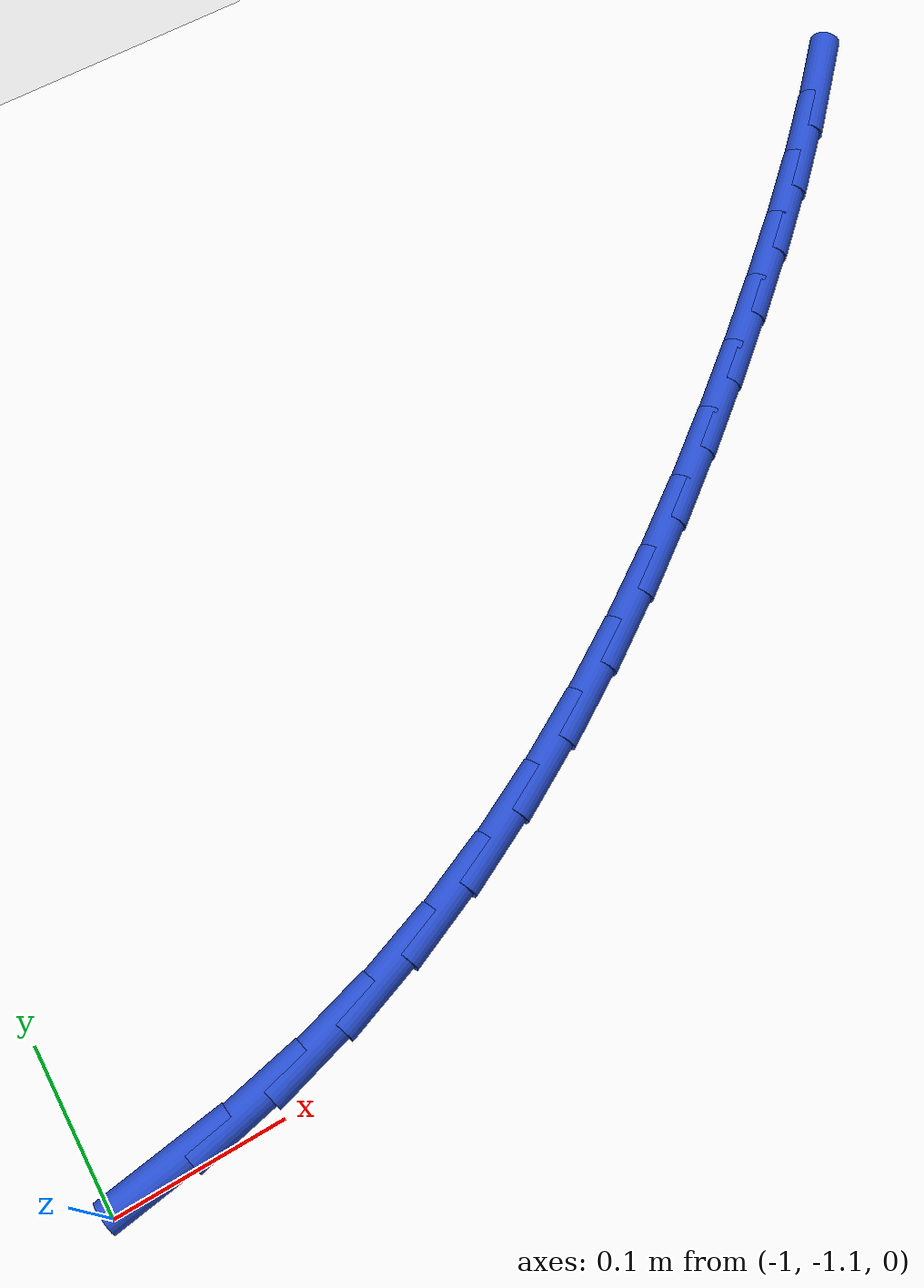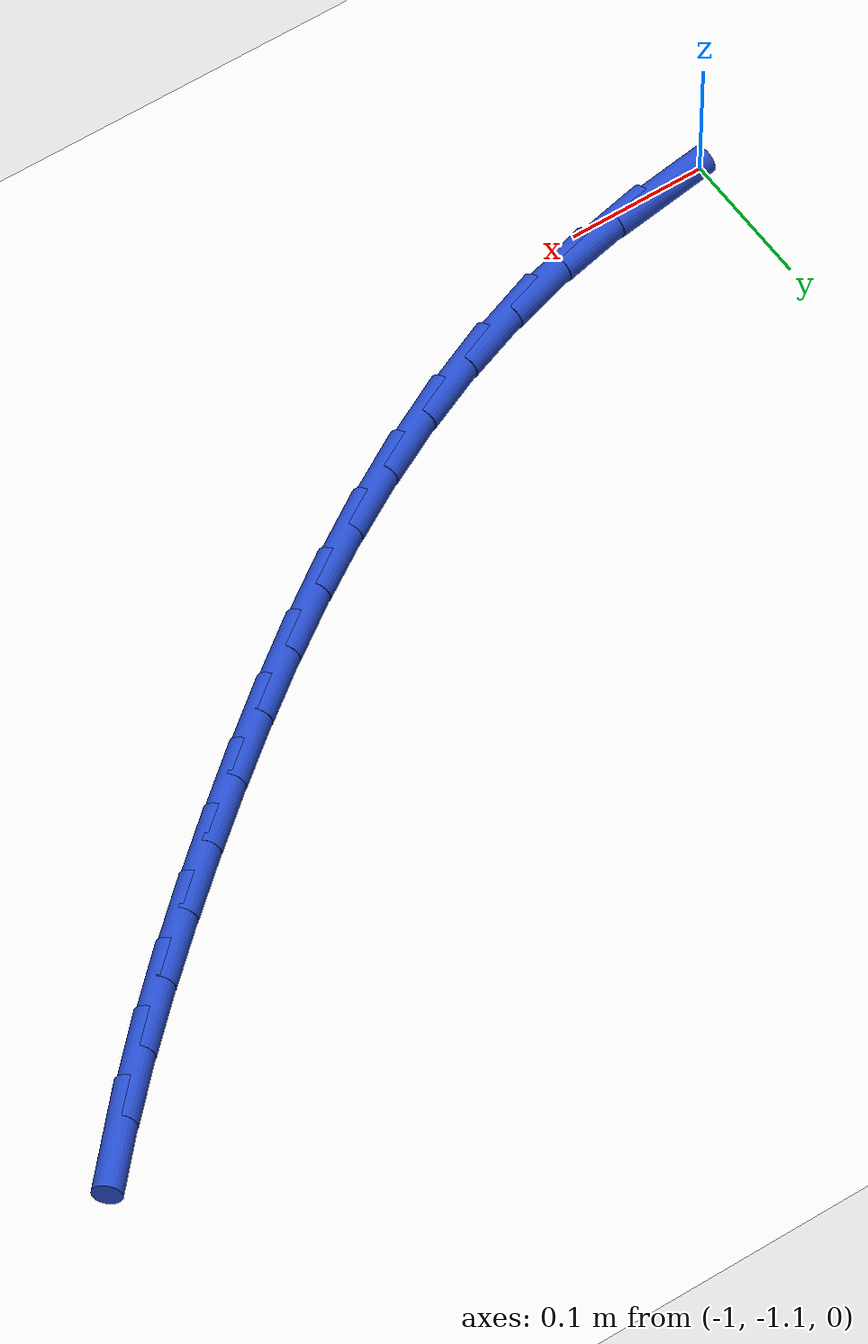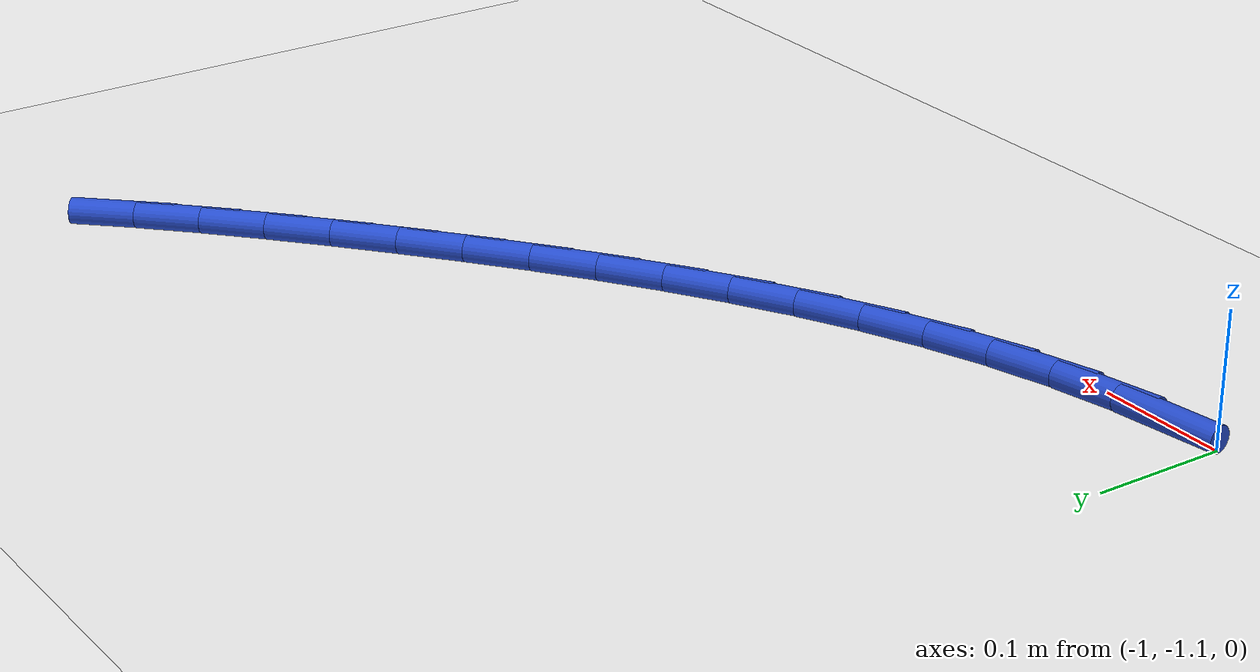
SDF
<sdf version="1.6">
 <world name="default">
  <model name="ground_plane">
   <static>1</static>
   <link name="link">
    <collision name="collision">
     <geometry><plane><normal>0 0 1</normal><size>100 100</size></plane></geometry>
     <surface><friction><ode><mu>100</mu><mu2>50</mu2></ode></friction></surface>
    </collision>
    <visual name="visual">
     <cast_shadows>0</cast_shadows>
     <geometry><plane><normal>0 0 1</normal><size>100 100</size></plane></geometry>
     <material>
      <script><uri>file://media/materials/scripts/gazebo.material</uri><name>Gazebo/WhiteGlow</name></script>
     </material>
    </visual>
   </link>
  </model>
  <model name="line">
   <link name="link_99">
    <pose>-0.9627286729455454 -1.0933399564920747 0.01 0 1.57 0.14373714194259793</pose>
    <collision name="collision">
     <geometry><cylinder><radius>0.01</radius><length>0.08</length></cylinder></geometry>
    </collision>
    <visual name="visual">
     <material>
      <script><name>Gazebo/Blue</name><uri>file://media/materials/scripts/gazebo.material</uri></script>
     </material>
     <geometry><cylinder><radius>0.01</radius><length>0.08</length></cylinder></geometry>
    </visual>
   </link>
   <link name="link_100">
    <pose>-0.9129106615626577 -1.0861295327241636 0.01 0 1.57 0.21806202132912664</pose>
    <collision name="collision">
     <geometry><cylinder><radius>0.01</radius><length>0.08</length></cylinder></geometry>
    </collision>
    <visual name="visual">
     <material>
      <script><name>Gazebo/Blue</name><uri>file://media/materials/scripts/gazebo.material</uri></script>
     </material>
     <geometry><cylinder><radius>0.01</radius><length>0.08</length></cylinder></geometry>
    </visual>
   </link>
   <link name="link_101">
    <pose>-0.8640718873249905 -1.0753075728177888 0.01 0 1.57 0.29240344692224823</pose>
    <collision name="collision">
     <geometry><cylinder><radius>0.01</radius><length>0.08</length></cylinder></geometry>
    </collision>
    <visual name="visual">
     <material>
      <script><name>Gazebo/Blue</name><uri>file://media/materials/scripts/gazebo.material</uri></script>
     </material>
     <geometry><cylinder><radius>0.01</radius><length>0.08</length></cylinder></geometry>
    </visual>
   </link>
   <link name="link_102">
    <pose>-0.8163472767594395 -1.0609409309491673 0.01 0 1.57 0.36127701911111876</pose>
    <collision name="collision">
     <geometry><cylinder><radius>0.01</radius><length>0.08</length></cylinder></geometry>
    </collision>
    <visual name="visual">
     <material>
      <script><name>Gazebo/Blue</name><uri>file://media/materials/scripts/gazebo.material</uri></script>
     </material>
     <geometry><cylinder><radius>0.01</radius><length>0.08</length></cylinder></geometry>
    </visual>
   </link>
   <link name="link_103">
    <pose>-0.7697017147978858 -1.0433153689563817 0.01 0 1.57 0.4238962108793412</pose>
    <collision name="collision">
     <geometry><cylinder><radius>0.01</radius><length>0.08</length></cylinder></geometry>
    </collision>
    <visual name="visual">
     <material>
      <script><name>Gazebo/Blue</name><uri>file://media/materials/scripts/gazebo.material</uri></script>
     </material>
     <geometry><cylinder><radius>0.01</radius><length>0.08</length></cylinder></geometry>
    </visual>
   </link>
   <link name="link_104">
    <pose>-0.7240881195067731 -1.0227320545464806 0.01 0 1.57 0.48010062893027894</pose>
    <collision name="collision">
     <geometry><cylinder><radius>0.01</radius><length>0.08</length></cylinder></geometry>
    </collision>
    <visual name="visual">
     <material>
      <script><name>Gazebo/Blue</name><uri>file://media/materials/scripts/gazebo.material</uri></script>
     </material>
     <geometry><cylinder><radius>0.01</radius><length>0.08</length></cylinder></geometry>
    </visual>
   </link>
   <link name="link_105">
    <pose>-0.6794594089525465 -0.9994921554265135 0.01 0 1.57 0.5299330348911121</pose>
    <collision name="collision">
     <geometry><cylinder><radius>0.01</radius><length>0.08</length></cylinder></geometry>
    </collision>
    <visual name="visual">
     <material>
      <script><name>Gazebo/Blue</name><uri>file://media/materials/scripts/gazebo.material</uri></script>
     </material>
     <geometry><cylinder><radius>0.01</radius><length>0.08</length></cylinder></geometry>
    </visual>
   </link>
   <link name="link_106">
    <pose>-0.6357685012016513 -0.9738968393035294 0.01 0 1.57 0.5735687559191118</pose>
    <collision name="collision">
     <geometry><cylinder><radius>0.01</radius><length>0.08</length></cylinder></geometry>
    </collision>
    <visual name="visual">
     <material>
      <script><name>Gazebo/Blue</name><uri>file://media/materials/scripts/gazebo.material</uri></script>
     </material>
     <geometry><cylinder><radius>0.01</radius><length>0.08</length></cylinder></geometry>
    </visual>
   </link>
   <link name="link_107">
    <pose>-0.5929683143205322 -0.9462472738845777 0.01 0 1.57 0.6112546546484939</pose>
    <collision name="collision">
     <geometry><cylinder><radius>0.01</radius><length>0.08</length></cylinder></geometry>
    </collision>
    <visual name="visual">
     <material>
      <script><name>Gazebo/Blue</name><uri>file://media/materials/scripts/gazebo.material</uri></script>
     </material>
     <geometry><cylinder><radius>0.01</radius><length>0.08</length></cylinder></geometry>
    </visual>
   </link>
   <link name="link_108">
    <pose>-0.5510117663756351 -0.9168446268767083 0.01 0 1.57 0.643261107271494</pose>
    <collision name="collision">
     <geometry><cylinder><radius>0.01</radius><length>0.08</length></cylinder></geometry>
    </collision>
    <visual name="visual">
     <material>
      <script><name>Gazebo/Blue</name><uri>file://media/materials/scripts/gazebo.material</uri></script>
     </material>
     <geometry><cylinder><radius>0.01</radius><length>0.08</length></cylinder></geometry>
    </visual>
   </link>
   <link name="link_109">
    <pose>-0.5098517754334045 -0.8859900659869705 0.01 0 1.57 0.6698465360869631</pose>
    <collision name="collision">
     <geometry><cylinder><radius>0.01</radius><length>0.08</length></cylinder></geometry>
    </collision>
    <visual name="visual">
     <material>
      <script><name>Gazebo/Blue</name><uri>file://media/materials/scripts/gazebo.material</uri></script>
     </material>
     <geometry><cylinder><radius>0.01</radius><length>0.08</length></cylinder></geometry>
    </visual>
   </link>
   <link name="link_110">
    <pose>-0.469441259560285 -0.8539847589224125 0.01 0 1.57 0.6912324249536501</pose>
    <collision name="collision">
     <geometry><cylinder><radius>0.01</radius><length>0.08</length></cylinder></geometry>
    </collision>
    <visual name="visual">
     <material>
      <script><name>Gazebo/Blue</name><uri>file://media/materials/scripts/gazebo.material</uri></script>
     </material>
     <geometry><cylinder><radius>0.01</radius><length>0.08</length></cylinder></geometry>
    </visual>
   </link>
   <link name="link_111">
    <pose>-0.4297331438967821 -0.8211298612330149 0.01 0 1.57 0.7093974341457018</pose>
    <collision name="collision">
     <geometry><cylinder><radius>0.01</radius><length>0.08</length></cylinder></geometry>
    </collision>
    <visual name="visual">
     <material>
      <script><name>Gazebo/Blue</name><uri>file://media/materials/scripts/gazebo.material</uri></script>
     </material>
     <geometry><cylinder><radius>0.01</radius><length>0.08</length></cylinder></geometry>
    </visual>
   </link>
   <link name="link_112">
    <pose>-0.3907279915418166 -0.7876446606136474 0.01 0 1.57 0.7305930602226658</pose>
    <collision name="collision">
     <geometry><cylinder><radius>0.01</radius><length>0.08</length></cylinder></geometry>
    </collision>
    <visual name="visual">
     <material>
      <script><name>Gazebo/Blue</name><uri>file://media/materials/scripts/gazebo.material</uri></script>
     </material>
     <geometry><cylinder><radius>0.01</radius><length>0.08</length></cylinder></geometry>
    </visual>
   </link>
   <link name="link_113">
    <pose>-0.35258758378441746 -0.7534713844512523 0.01 0 1.57 0.7562334243860176</pose>
    <collision name="collision">
     <geometry><cylinder><radius>0.01</radius><length>0.08</length></cylinder></geometry>
    </collision>
    <visual name="visual">
     <material>
      <script><name>Gazebo/Blue</name><uri>file://media/materials/scripts/gazebo.material</uri></script>
     </material>
     <geometry><cylinder><radius>0.01</radius><length>0.08</length></cylinder></geometry>
    </visual>
   </link>
   <link name="link_114">
    <pose>-0.31550777299545696 -0.7184937075313513 0.01 0 1.57 0.7864444485180239</pose>
    <collision name="collision">
     <geometry><cylinder><radius>0.01</radius><length>0.08</length></cylinder></geometry>
    </collision>
    <visual name="visual">
     <material>
      <script><name>Gazebo/Blue</name><uri>file://media/materials/scripts/gazebo.material</uri></script>
     </material>
     <geometry><cylinder><radius>0.01</radius><length>0.08</length></cylinder></geometry>
    </visual>
   </link>
   <link name="link_115">
    <pose>-0.2796844115458067 -0.6825953046394662 0.01 0 1.57 0.821345645863947</pose>
    <collision name="collision">
     <geometry><cylinder><radius>0.01</radius><length>0.08</length></cylinder></geometry>
    </collision>
    <visual name="visual">
     <material>
      <script><name>Gazebo/Blue</name><uri>file://media/materials/scripts/gazebo.material</uri></script>
     </material>
     <geometry><cylinder><radius>0.01</radius><length>0.08</length></cylinder></geometry>
    </visual>
   </link>
  </model>
 </world>
</sdf>
